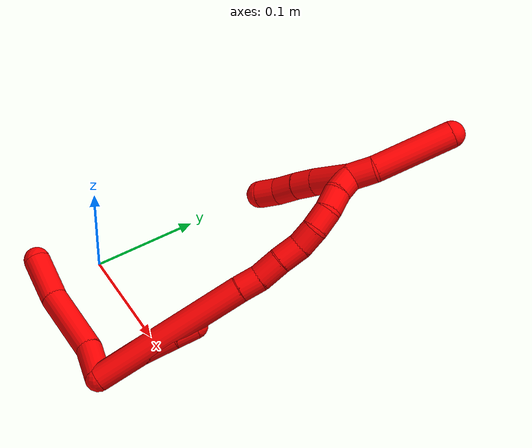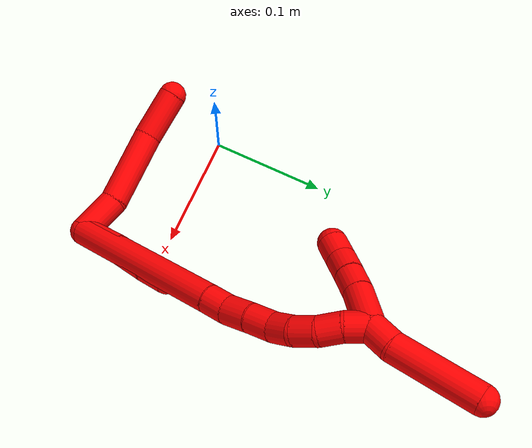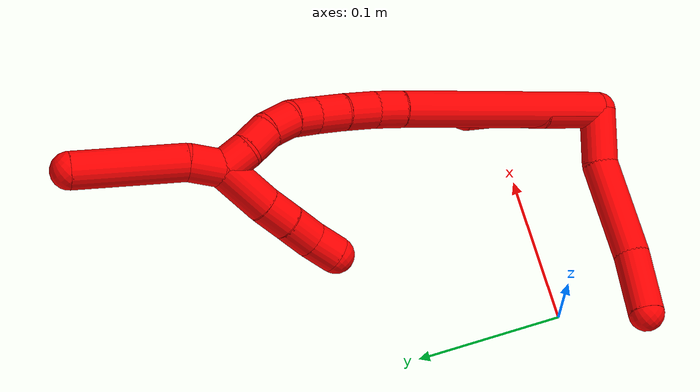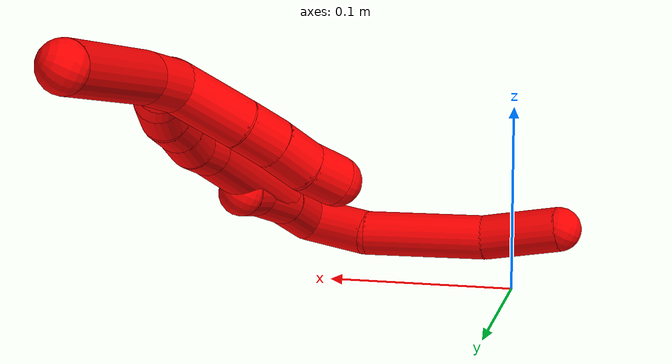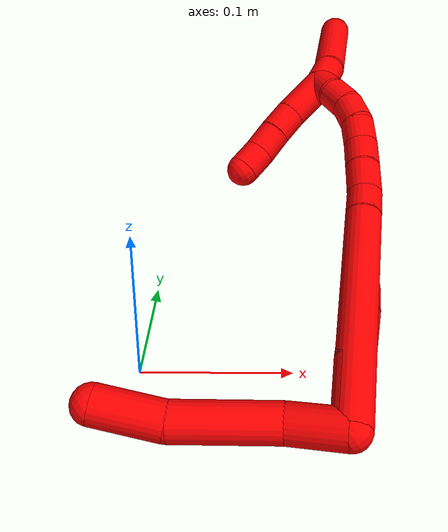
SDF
<sdf version="1.7">
 <world name="default">
  <model name="2">
   <static>0</static>
   <link name="2">
    <collision name="collision-cylinder-e_1_2_8">
     <pose>-0.007372 0.012147 -0.01261 -2.37488 -0.398503 0.928384</pose>
     <geometry><cylinder><radius>0.0125</radius><length>0.037995</length></cylinder></geometry>
     <surface>
      <friction><ode><mu>1.16</mu><mu2>1.16</mu2><slip1>0</slip1><slip2>0</slip2></ode></friction>
      <contact><ode><kp>1e+06</kp><kd>1</kd><max_vel>0</max_vel><min_depth>0.001</min_depth></ode></contact>
     </surface>
    </collision>
    <visual name="visual-cylinder-e_1_2_8">
     <pose>-0.007372 0.012147 -0.01261 -2.37488 -0.398503 0.928384</pose>
     <geometry><cylinder><radius>0.0125</radius><length>0.037995</length></cylinder></geometry>
     <material><ambient>1 0 0 1</ambient></material>
    </visual>
    <collision name="collision-cylinder-e_2_8_9">
     <pose>-0.032185 0.037669 -0.05113 -2.66507 -0.539058 1.69922</pose>
     <geometry><cylinder><radius>0.0125</radius><length>0.067954</length></cylinder></geometry>
     <surface>
      <friction><ode><mu>1.16</mu><mu2>1.16</mu2><slip1>0</slip1><slip2>0</slip2></ode></friction>
      <contact><ode><kp>1e+06</kp><kd>1</kd><max_vel>0</max_vel><min_depth>0.001</min_depth></ode></contact>
     </surface>
    </collision>
    <visual name="visual-cylinder-e_2_8_9">
     <pose>-0.032185 0.037669 -0.05113 -2.66507 -0.539058 1.69922</pose>
     <geometry><cylinder><radius>0.0125</radius><length>0.067954</length></cylinder></geometry>
     <material><ambient>1 0 0 1</ambient></material>
    </visual>
    <collision name="collision-cylinder-e_3_9_6">
     <pose>-0.063985 0.060725 -0.09065 -2.52329 -0.710108 1.71939</pose>
     <geometry><cylinder><radius>0.0125</radius><length>0.044051</length></cylinder></geometry>
     <surface>
      <friction><ode><mu>1.16</mu><mu2>1.16</mu2><slip1>0</slip1><slip2>0</slip2></ode></friction>
      <contact><ode><kp>1e+06</kp><kd>1</kd><max_vel>0</max_vel><min_depth>0.001</min_depth></ode></contact>
     </surface>
    </collision>
    <visual name="visual-cylinder-e_3_9_6">
     <pose>-0.063985 0.060725 -0.09065 -2.52329 -0.710108 1.71939</pose>
     <geometry><cylinder><radius>0.0125</radius><length>0.044051</length></cylinder></geometry>
     <material><ambient>1 0 0 1</ambient></material>
    </visual>
    <collision name="collision-cylinder-e_1_2_10">
     <pose>-0.006609 0.013695 0.015154 -0.734866 -0.312939 0.121298</pose>
     <geometry><cylinder><radius>0.0125</radius><length>0.042936</length></cylinder></geometry>
     <surface>
      <friction><ode><mu>1.16</mu><mu2>1.16</mu2><slip1>0</slip1><slip2>0</slip2></ode></friction>
      <contact><ode><kp>1e+06</kp><kd>1</kd><max_vel>0</max_vel><min_depth>0.001</min_depth></ode></contact>
     </surface>
    </collision>
    <visual name="visual-cylinder-e_1_2_10">
     <pose>-0.006609 0.013695 0.015154 -0.734866 -0.312939 0.121298</pose>
     <geometry><cylinder><radius>0.0125</radius><length>0.042936</length></cylinder></geometry>
     <material><ambient>1 0 0 1</ambient></material>
    </visual>
    <collision name="collision-cylinder-e_2_10_11">
     <pose>-0.016736 0.038952 0.043291 -0.727587 -0.199662 0.076236</pose>
     <geometry><cylinder><radius>0.0125</radius><length>0.035476</length></cylinder></geometry>
     <surface>
      <friction><ode><mu>1.16</mu><mu2>1.16</mu2><slip1>0</slip1><slip2>0</slip2></ode></friction>
      <contact><ode><kp>1e+06</kp><kd>1</kd><max_vel>0</max_vel><min_depth>0.001</min_depth></ode></contact>
     </surface>
    </collision>
    <visual name="visual-cylinder-e_2_10_11">
     <pose>-0.016736 0.038952 0.043291 -0.727587 -0.199662 0.076236</pose>
     <geometry><cylinder><radius>0.0125</radius><length>0.035476</length></cylinder></geometry>
     <material><ambient>1 0 0 1</ambient></material>
    </visual>
    <collision name="collision-cylinder-e_3_11_5">
     <pose>-0.021552 0.058685 0.063208 -0.867045 -0.120491 0.055827</pose>
     <geometry><cylinder><radius>0.0125</radius><length>0.021588</length></cylinder></geometry>
     <surface>
      <friction><ode><mu>1.16</mu><mu2>1.16</mu2><slip1>0</slip1><slip2>0</slip2></ode></friction>
      <contact><ode><kp>1e+06</kp><kd>1</kd><max_vel>0</max_vel><min_depth>0.001</min_depth></ode></contact>
     </surface>
    </collision>
    <visual name="visual-cylinder-e_3_11_5">
     <pose>-0.021552 0.058685 0.063208 -0.867045 -0.120491 0.055827</pose>
     <geometry><cylinder><radius>0.0125</radius><length>0.021588</length></cylinder></geometry>
     <material><ambient>1 0 0 1</ambient></material>
    </visual>
    <collision name="collision-cylinder-e_1_2_12">
     <pose>-0.023579 0.04794 0.054448 -0.721929 -0.314252 0.119475</pose>
     <geometry><cylinder><radius>0.0125</radius><length>0.152562</length></cylinder></geometry>
     <surface>
      <friction><ode><mu>1.16</mu><mu2>1.16</mu2><slip1>0</slip1><slip2>0</slip2></ode></friction>
      <contact><ode><kp>1e+06</kp><kd>1</kd><max_vel>0</max_vel><min_depth>0.001</min_depth></ode></contact>
     </surface>
    </collision>
    <visual name="visual-cylinder-e_1_2_12">
     <pose>-0.023579 0.04794 0.054448 -0.721929 -0.314252 0.119475</pose>
     <geometry><cylinder><radius>0.0125</radius><length>0.152562</length></cylinder></geometry>
     <material><ambient>1 0 0 1</ambient></material>
    </visual>
    <collision name="collision-cylinder-e_2_12_13">
     <pose>-0.049643 0.102816 0.116093 -0.766795 -0.24368 0.098699</pose>
     <geometry><cylinder><radius>0.0125</radius><length>0.020599</length></cylinder></geometry>
     <surface>
      <friction><ode><mu>1.16</mu><mu2>1.16</mu2><slip1>0</slip1><slip2>0</slip2></ode></friction>
      <contact><ode><kp>1e+06</kp><kd>1</kd><max_vel>0</max_vel><min_depth>0.001</min_depth></ode></contact>
     </surface>
    </collision>
    <visual name="visual-cylinder-e_2_12_13">
     <pose>-0.049643 0.102816 0.116093 -0.766795 -0.24368 0.098699</pose>
     <geometry><cylinder><radius>0.0125</radius><length>0.020599</length></cylinder></geometry>
     <material><ambient>1 0 0 1</ambient></material>
    </visual>
    <collision name="collision-cylinder-e_3_13_14">
     <pose>-0.057351 0.117233 0.131086 -0.764925 -0.450261 0.183732</pose>
     <geometry><cylinder><radius>0.0125</radius><length>0.024002</length></cylinder></geometry>
     <surface>
      <friction><ode><mu>1.16</mu><mu2>1.16</mu2><slip1>0</slip1><slip2>0</slip2></ode></friction>
      <contact><ode><kp>1e+06</kp><kd>1</kd><max_vel>0</max_vel><min_depth>0.001</min_depth></ode></contact>
     </surface>
    </collision>
    <visual name="visual-cylinder-e_3_13_14">
     <pose>-0.057351 0.117233 0.131086 -0.764925 -0.450261 0.183732</pose>
     <geometry><cylinder><radius>0.0125</radius><length>0.024002</length></cylinder></geometry>
     <material><ambient>1 0 0 1</ambient></material>
    </visual>
    <collision name="collision-cylinder-e_4_14_15">
     <pose>-0.066483 0.13248 0.146066 -0.824136 -0.353974 0.156038</pose>
     <geometry><cylinder><radius>0.0125</radius><length>0.022555</length></cylinder></geometry>
     <surface>
      <friction><ode><mu>1.16</mu><mu2>1.16</mu2><slip1>0</slip1><slip2>0</slip2></ode></friction>
      <contact><ode><kp>1e+06</kp><kd>1</kd><max_vel>0</max_vel><min_depth>0.001</min_depth></ode></contact>
     </surface>
    </collision>
    <visual name="visual-cylinder-e_4_14_15">
     <pose>-0.066483 0.13248 0.146066 -0.824136 -0.353974 0.156038</pose>
     <geometry><cylinder><radius>0.0125</radius><length>0.022555</length></cylinder></geometry>
     <material><ambient>1 0 0 1</ambient></material>
    </visual>
    <collision name="collision-cylinder-e_5_15_16">
     <pose>-0.076133 0.146032 0.159145 -0.776369 -0.607336 0.254898</pose>
     <geometry><cylinder><radius>0.0125</radius><length>0.020122</length></cylinder></geometry>
     <surface>
      <friction><ode><mu>1.16</mu><mu2>1.16</mu2><slip1>0</slip1><slip2>0</slip2></ode></friction>
      <contact><ode><kp>1e+06</kp><kd>1</kd><max_vel>0</max_vel><min_depth>0.001</min_depth></ode></contact>
     </surface>
    </collision>
    <visual name="visual-cylinder-e_5_15_16">
     <pose>-0.076133 0.146032 0.159145 -0.776369 -0.607336 0.254898</pose>
     <geometry><cylinder><radius>0.0125</radius><length>0.020122</length></cylinder></geometry>
     <material><ambient>1 0 0 1</ambient></material>
    </visual>
    <collision name="collision-cylinder-e_6_16_17">
     <pose>-0.087277 0.159473 0.16876 -1.11823 -0.56572 0.359799</pose>
     <geometry><cylinder><radius>0.0125</radius><length>0.020156</length></cylinder></geometry>
     <surface>
      <friction><ode><mu>1.16</mu><mu2>1.16</mu2><slip1>0</slip1><slip2>0</slip2></ode></friction>
      <contact><ode><kp>1e+06</kp><kd>1</kd><max_vel>0</max_vel><min_depth>0.001</min_depth></ode></contact>
     </surface>
    </collision>
    <visual name="visual-cylinder-e_6_16_17">
     <pose>-0.087277 0.159473 0.16876 -1.11823 -0.56572 0.359799</pose>
     <geometry><cylinder><radius>0.0125</radius><length>0.020156</length></cylinder></geometry>
     <material><ambient>1 0 0 1</ambient></material>
    </visual>
    <collision name="collision-cylinder-e_7_17_18">
     <pose>-0.097607 0.175762 0.173536 -1.44918 -0.515293 0.458321</pose>
     <geometry><cylinder><radius>0.0125</radius><length>0.020002</length></cylinder></geometry>
     <surface>
      <friction><ode><mu>1.16</mu><mu2>1.16</mu2><slip1>0</slip1><slip2>0</slip2></ode></friction>
      <contact><ode><kp>1e+06</kp><kd>1</kd><max_vel>0</max_vel><min_depth>0.001</min_depth></ode></contact>
     </surface>
    </collision>
    <visual name="visual-cylinder-e_7_17_18">
     <pose>-0.097607 0.175762 0.173536 -1.44918 -0.515293 0.458321</pose>
     <geometry><cylinder><radius>0.0125</radius><length>0.020002</length></cylinder></geometry>
     <material><ambient>1 0 0 1</ambient></material>
    </visual>
    <collision name="collision-cylinder-e_8_18_1">
     <pose>-0.105493 0.193819 0.176192 -1.40246 -0.30016 0.253999</pose>
     <geometry><cylinder><radius>0.0125</radius><length>0.020002</length></cylinder></geometry>
     <surface>
      <friction><ode><mu>1.16</mu><mu2>1.16</mu2><slip1>0</slip1><slip2>0</slip2></ode></friction>
      <contact><ode><kp>1e+06</kp><kd>1</kd><max_vel>0</max_vel><min_depth>0.001</min_depth></ode></contact>
     </surface>
    </collision>
    <visual name="visual-cylinder-e_8_18_1">
     <pose>-0.105493 0.193819 0.176192 -1.40246 -0.30016 0.253999</pose>
     <geometry><cylinder><radius>0.0125</radius><length>0.020002</length></cylinder></geometry>
     <material><ambient>1 0 0 1</ambient></material>
    </visual>
    <collision name="collision-cylinder-e_1_1_19">
     <pose>-0.106117 0.202161 0.159264 3.08354 0.125047 2.2731</pose>
     <geometry><cylinder><radius>0.0125</radius><length>0.037412</length></cylinder></geometry>
     <surface>
      <friction><ode><mu>1.16</mu><mu2>1.16</mu2><slip1>0</slip1><slip2>0</slip2></ode></friction>
      <contact><ode><kp>1e+06</kp><kd>1</kd><max_vel>0</max_vel><min_depth>0.001</min_depth></ode></contact>
     </surface>
    </collision>
    <visual name="visual-cylinder-e_1_1_19">
     <pose>-0.106117 0.202161 0.159264 3.08354 0.125047 2.2731</pose>
     <geometry><cylinder><radius>0.0125</radius><length>0.037412</length></cylinder></geometry>
     <material><ambient>1 0 0 1</ambient></material>
    </visual>
    <collision name="collision-cylinder-e_2_19_20">
     <pose>-0.102072 0.199693 0.13041 3.00767 0.162867 1.76595</pose>
     <geometry><cylinder><radius>0.0125</radius><length>0.021118</length></cylinder></geometry>
     <surface>
      <friction><ode><mu>1.16</mu><mu2>1.16</mu2><slip1>0</slip1><slip2>0</slip2></ode></friction>
      <contact><ode><kp>1e+06</kp><kd>1</kd><max_vel>0</max_vel><min_depth>0.001</min_depth></ode></contact>
     </surface>
    </collision>
    <visual name="visual-cylinder-e_2_19_20">
     <pose>-0.102072 0.199693 0.13041 3.00767 0.162867 1.76595</pose>
     <geometry><cylinder><radius>0.0125</radius><length>0.021118</length></cylinder></geometry>
     <material><ambient>1 0 0 1</ambient></material>
    </visual>
    <collision name="collision-cylinder-e_3_20_21">
     <pose>-0.097961 0.197087 0.109711 3.02499 0.22576 2.19066</pose>
     <geometry><cylinder><radius>0.0125</radius><length>0.021431</length></cylinder></geometry>
     <surface>
      <friction><ode><mu>1.16</mu><mu2>1.16</mu2><slip1>0</slip1><slip2>0</slip2></ode></friction>
      <contact><ode><kp>1e+06</kp><kd>1</kd><max_vel>0</max_vel><min_depth>0.001</min_depth></ode></contact>
     </surface>
    </collision>
    <visual name="visual-cylinder-e_3_20_21">
     <pose>-0.097961 0.197087 0.109711 3.02499 0.22576 2.19066</pose>
     <geometry><cylinder><radius>0.0125</radius><length>0.021431</length></cylinder></geometry>
     <material><ambient>1 0 0 1</ambient></material>
    </visual>
    <collision name="collision-cylinder-e_4_21_4">
     <pose>-0.094568 0.193806 0.089584 2.9329 0.099364 0.886549</pose>
     <geometry><cylinder><radius>0.0125</radius><length>0.020038</length></cylinder></geometry>
     <surface>
      <friction><ode><mu>1.16</mu><mu2>1.16</mu2><slip1>0</slip1><slip2>0</slip2></ode></friction>
      <contact><ode><kp>1e+06</kp><kd>1</kd><max_vel>0</max_vel><min_depth>0.001</min_depth></ode></contact>
     </surface>
    </collision>
    <visual name="visual-cylinder-e_4_21_4">
     <pose>-0.094568 0.193806 0.089584 2.9329 0.099364 0.886549</pose>
     <geometry><cylinder><radius>0.0125</radius><length>0.020038</length></cylinder></geometry>
     <material><ambient>1 0 0 1</ambient></material>
    </visual>
    <collision name="collision-cylinder-e_1_1_22">
     <pose>-0.109519 0.209806 0.187538 -0.59306 -0.090699 0.027729</pose>
     <geometry><cylinder><radius>0.0125</radius><length>0.023599</length></cylinder></geometry>
     <surface>
      <friction><ode><mu>1.16</mu><mu2>1.16</mu2><slip1>0</slip1><slip2>0</slip2></ode></friction>
      <contact><ode><kp>1e+06</kp><kd>1</kd><max_vel>0</max_vel><min_depth>0.001</min_depth></ode></contact>
     </surface>
    </collision>
    <visual name="visual-cylinder-e_1_1_22">
     <pose>-0.109519 0.209806 0.187538 -0.59306 -0.090699 0.027729</pose>
     <geometry><cylinder><radius>0.0125</radius><length>0.023599</length></cylinder></geometry>
     <material><ambient>1 0 0 1</ambient></material>
    </visual>
    <collision name="collision-cylinder-e_2_22_3">
     <pose>-0.115035 0.244564 0.222675 -0.837565 -0.116707 0.051995</pose>
     <geometry><cylinder><radius>0.0125</radius><length>0.076401</length></cylinder></geometry>
     <surface>
      <friction><ode><mu>1.16</mu><mu2>1.16</mu2><slip1>0</slip1><slip2>0</slip2></ode></friction>
      <contact><ode><kp>1e+06</kp><kd>1</kd><max_vel>0</max_vel><min_depth>0.001</min_depth></ode></contact>
     </surface>
    </collision>
    <visual name="visual-cylinder-e_2_22_3">
     <pose>-0.115035 0.244564 0.222675 -0.837565 -0.116707 0.051995</pose>
     <geometry><cylinder><radius>0.0125</radius><length>0.076401</length></cylinder></geometry>
     <material><ambient>1 0 0 1</ambient></material>
    </visual>
    <collision name="collision-sphere-3">
     <pose>-0.119484 0.272754 0.248067 0 -0 0</pose>
     <geometry><sphere><radius>0.0125</radius></sphere></geometry>
     <surface>
      <friction><ode><mu>1.16</mu><mu2>1.16</mu2><slip1>0</slip1><slip2>0</slip2></ode></friction>
      <contact><ode><kp>1e+06</kp><kd>1</kd><max_vel>0</max_vel><min_depth>0.001</min_depth></ode></contact>
     </surface>
    </collision>
    <visual name="visual-sphere-3">
     <pose>-0.119484 0.272754 0.248067 0 -0 0</pose>
     <geometry><sphere><radius>0.0125</radius></sphere></geometry>
     <material><ambient>1 0 0 1</ambient></material>
    </visual>
    <collision name="collision-sphere-22">
     <pose>-0.110587 0.216373 0.197282 0 -0 0</pose>
     <geometry><sphere><radius>0.0125</radius></sphere></geometry>
     <surface>
      <friction><ode><mu>1.16</mu><mu2>1.16</mu2><slip1>0</slip1><slip2>0</slip2></ode></friction>
      <contact><ode><kp>1e+06</kp><kd>1</kd><max_vel>0</max_vel><min_depth>0.001</min_depth></ode></contact>
     </surface>
    </collision>
    <visual name="visual-sphere-22">
     <pose>-0.110587 0.216373 0.197282 0 -0 0</pose>
     <geometry><sphere><radius>0.0125</radius></sphere></geometry>
     <material><ambient>1 0 0 1</ambient></material>
    </visual>
    <collision name="collision-sphere-4">
     <pose>-0.093574 0.191741 0.079831 0 -0 0</pose>
     <geometry><sphere><radius>0.0125</radius></sphere></geometry>
     <surface>
      <friction><ode><mu>1.16</mu><mu2>1.16</mu2><slip1>0</slip1><slip2>0</slip2></ode></friction>
      <contact><ode><kp>1e+06</kp><kd>1</kd><max_vel>0</max_vel><min_depth>0.001</min_depth></ode></contact>
     </surface>
    </collision>
    <visual name="visual-sphere-4">
     <pose>-0.093574 0.191741 0.079831 0 -0 0</pose>
     <geometry><sphere><radius>0.0125</radius></sphere></geometry>
     <material><ambient>1 0 0 1</ambient></material>
    </visual>
    <collision name="collision-sphere-21">
     <pose>-0.095562 0.195872 0.099338 0 -0 0</pose>
     <geometry><sphere><radius>0.0125</radius></sphere></geometry>
     <surface>
      <friction><ode><mu>1.16</mu><mu2>1.16</mu2><slip1>0</slip1><slip2>0</slip2></ode></friction>
      <contact><ode><kp>1e+06</kp><kd>1</kd><max_vel>0</max_vel><min_depth>0.001</min_depth></ode></contact>
     </surface>
    </collision>
    <visual name="visual-sphere-21">
     <pose>-0.095562 0.195872 0.099338 0 -0 0</pose>
     <geometry><sphere><radius>0.0125</radius></sphere></geometry>
     <material><ambient>1 0 0 1</ambient></material>
    </visual>
    <collision name="collision-sphere-20">
     <pose>-0.100359 0.198302 0.120083 0 -0 0</pose>
     <geometry><sphere><radius>0.0125</radius></sphere></geometry>
     <surface>
      <friction><ode><mu>1.16</mu><mu2>1.16</mu2><slip1>0</slip1><slip2>0</slip2></ode></friction>
      <contact><ode><kp>1e+06</kp><kd>1</kd><max_vel>0</max_vel><min_depth>0.001</min_depth></ode></contact>
     </surface>
    </collision>
    <visual name="visual-sphere-20">
     <pose>-0.100359 0.198302 0.120083 0 -0 0</pose>
     <geometry><sphere><radius>0.0125</radius></sphere></geometry>
     <material><ambient>1 0 0 1</ambient></material>
    </visual>
    <collision name="collision-sphere-11">
     <pose>-0.020254 0.050515 0.056274 0 -0 0</pose>
     <geometry><sphere><radius>0.0125</radius></sphere></geometry>
     <surface>
      <friction><ode><mu>1.16</mu><mu2>1.16</mu2><slip1>0</slip1><slip2>0</slip2></ode></friction>
      <contact><ode><kp>1e+06</kp><kd>1</kd><max_vel>0</max_vel><min_depth>0.001</min_depth></ode></contact>
     </surface>
    </collision>
    <visual name="visual-sphere-11">
     <pose>-0.020254 0.050515 0.056274 0 -0 0</pose>
     <geometry><sphere><radius>0.0125</radius></sphere></geometry>
     <material><ambient>1 0 0 1</ambient></material>
    </visual>
    <collision name="collision-sphere-10">
     <pose>-0.013218 0.02739 0.030308 0 -0 0</pose>
     <geometry><sphere><radius>0.0125</radius></sphere></geometry>
     <surface>
      <friction><ode><mu>1.16</mu><mu2>1.16</mu2><slip1>0</slip1><slip2>0</slip2></ode></friction>
      <contact><ode><kp>1e+06</kp><kd>1</kd><max_vel>0</max_vel><min_depth>0.001</min_depth></ode></contact>
     </surface>
    </collision>
    <visual name="visual-sphere-10">
     <pose>-0.013218 0.02739 0.030308 0 -0 0</pose>
     <geometry><sphere><radius>0.0125</radius></sphere></geometry>
     <material><ambient>1 0 0 1</ambient></material>
    </visual>
    <collision name="collision-sphere-6">
     <pose>-0.078344 0.070407 -0.10426 0 -0 0</pose>
     <geometry><sphere><radius>0.0125</radius></sphere></geometry>
     <surface>
      <friction><ode><mu>1.16</mu><mu2>1.16</mu2><slip1>0</slip1><slip2>0</slip2></ode></friction>
      <contact><ode><kp>1e+06</kp><kd>1</kd><max_vel>0</max_vel><min_depth>0.001</min_depth></ode></contact>
     </surface>
    </collision>
    <visual name="visual-sphere-6">
     <pose>-0.078344 0.070407 -0.10426 0 -0 0</pose>
     <geometry><sphere><radius>0.0125</radius></sphere></geometry>
     <material><ambient>1 0 0 1</ambient></material>
    </visual>
    <collision name="collision-sphere-9">
     <pose>-0.049626 0.051044 -0.07704 0 -0 0</pose>
     <geometry><sphere><radius>0.0125</radius></sphere></geometry>
     <surface>
      <friction><ode><mu>1.16</mu><mu2>1.16</mu2><slip1>0</slip1><slip2>0</slip2></ode></friction>
      <contact><ode><kp>1e+06</kp><kd>1</kd><max_vel>0</max_vel><min_depth>0.001</min_depth></ode></contact>
     </surface>
    </collision>
    <visual name="visual-sphere-9">
     <pose>-0.049626 0.051044 -0.07704 0 -0 0</pose>
     <geometry><sphere><radius>0.0125</radius></sphere></geometry>
     <material><ambient>1 0 0 1</ambient></material>
    </visual>
    <collision name="collision-sphere-2">
     <geometry><sphere><radius>0.0125</radius></sphere></geometry>
     <surface>
      <friction><ode><mu>1.16</mu><mu2>1.16</mu2><slip1>0</slip1><slip2>0</slip2></ode></friction>
      <contact><ode><kp>1e+06</kp><kd>1</kd><max_vel>0</max_vel><min_depth>0.001</min_depth></ode></contact>
     </surface>
    </collision>
    <visual name="visual-sphere-2">
     <geometry><sphere><radius>0.0125</radius></sphere></geometry>
     <material><ambient>1 0 0 1</ambient></material>
    </visual>
    <collision name="collision-sphere-19">
     <pose>-0.103784 0.201084 0.140736 0 -0 0</pose>
     <geometry><sphere><radius>0.0125</radius></sphere></geometry>
     <surface>
      <friction><ode><mu>1.16</mu><mu2>1.16</mu2><slip1>0</slip1><slip2>0</slip2></ode></friction>
      <contact><ode><kp>1e+06</kp><kd>1</kd><max_vel>0</max_vel><min_depth>0.001</min_depth></ode></contact>
     </surface>
    </collision>
    <visual name="visual-sphere-19">
     <pose>-0.103784 0.201084 0.140736 0 -0 0</pose>
     <geometry><sphere><radius>0.0125</radius></sphere></geometry>
     <material><ambient>1 0 0 1</ambient></material>
    </visual>
    <collision name="collision-sphere-8">
     <pose>-0.014744 0.024294 -0.02522 0 -0 0</pose>
     <geometry><sphere><radius>0.0125</radius></sphere></geometry>
     <surface>
      <friction><ode><mu>1.16</mu><mu2>1.16</mu2><slip1>0</slip1><slip2>0</slip2></ode></friction>
      <contact><ode><kp>1e+06</kp><kd>1</kd><max_vel>0</max_vel><min_depth>0.001</min_depth></ode></contact>
     </surface>
    </collision>
    <visual name="visual-sphere-8">
     <pose>-0.014744 0.024294 -0.02522 0 -0 0</pose>
     <geometry><sphere><radius>0.0125</radius></sphere></geometry>
     <material><ambient>1 0 0 1</ambient></material>
    </visual>
    <collision name="collision-sphere-5">
     <pose>-0.022849 0.066855 0.070142 0 -0 0</pose>
     <geometry><sphere><radius>0.0125</radius></sphere></geometry>
     <surface>
      <friction><ode><mu>1.16</mu><mu2>1.16</mu2><slip1>0</slip1><slip2>0</slip2></ode></friction>
      <contact><ode><kp>1e+06</kp><kd>1</kd><max_vel>0</max_vel><min_depth>0.001</min_depth></ode></contact>
     </surface>
    </collision>
    <visual name="visual-sphere-5">
     <pose>-0.022849 0.066855 0.070142 0 -0 0</pose>
     <geometry><sphere><radius>0.0125</radius></sphere></geometry>
     <material><ambient>1 0 0 1</ambient></material>
    </visual>
    <collision name="collision-sphere-12">
     <pose>-0.047158 0.095881 0.108895 0 -0 0</pose>
     <geometry><sphere><radius>0.0125</radius></sphere></geometry>
     <surface>
      <friction><ode><mu>1.16</mu><mu2>1.16</mu2><slip1>0</slip1><slip2>0</slip2></ode></friction>
      <contact><ode><kp>1e+06</kp><kd>1</kd><max_vel>0</max_vel><min_depth>0.001</min_depth></ode></contact>
     </surface>
    </collision>
    <visual name="visual-sphere-12">
     <pose>-0.047158 0.095881 0.108895 0 -0 0</pose>
     <geometry><sphere><radius>0.0125</radius></sphere></geometry>
     <material><ambient>1 0 0 1</ambient></material>
    </visual>
    <collision name="collision-sphere-13">
     <pose>-0.052128 0.109751 0.123291 0 -0 0</pose>
     <geometry><sphere><radius>0.0125</radius></sphere></geometry>
     <surface>
      <friction><ode><mu>1.16</mu><mu2>1.16</mu2><slip1>0</slip1><slip2>0</slip2></ode></friction>
      <contact><ode><kp>1e+06</kp><kd>1</kd><max_vel>0</max_vel><min_depth>0.001</min_depth></ode></contact>
     </surface>
    </collision>
    <visual name="visual-sphere-13">
     <pose>-0.052128 0.109751 0.123291 0 -0 0</pose>
     <geometry><sphere><radius>0.0125</radius></sphere></geometry>
     <material><ambient>1 0 0 1</ambient></material>
    </visual>
    <collision name="collision-sphere-14">
     <pose>-0.062574 0.124716 0.138882 0 -0 0</pose>
     <geometry><sphere><radius>0.0125</radius></sphere></geometry>
     <surface>
      <friction><ode><mu>1.16</mu><mu2>1.16</mu2><slip1>0</slip1><slip2>0</slip2></ode></friction>
      <contact><ode><kp>1e+06</kp><kd>1</kd><max_vel>0</max_vel><min_depth>0.001</min_depth></ode></contact>
     </surface>
    </collision>
    <visual name="visual-sphere-14">
     <pose>-0.062574 0.124716 0.138882 0 -0 0</pose>
     <geometry><sphere><radius>0.0125</radius></sphere></geometry>
     <material><ambient>1 0 0 1</ambient></material>
    </visual>
    <collision name="collision-sphere-15">
     <pose>-0.070392 0.140243 0.153251 0 -0 0</pose>
     <geometry><sphere><radius>0.0125</radius></sphere></geometry>
     <surface>
      <friction><ode><mu>1.16</mu><mu2>1.16</mu2><slip1>0</slip1><slip2>0</slip2></ode></friction>
      <contact><ode><kp>1e+06</kp><kd>1</kd><max_vel>0</max_vel><min_depth>0.001</min_depth></ode></contact>
     </surface>
    </collision>
    <visual name="visual-sphere-15">
     <pose>-0.070392 0.140243 0.153251 0 -0 0</pose>
     <geometry><sphere><radius>0.0125</radius></sphere></geometry>
     <material><ambient>1 0 0 1</ambient></material>
    </visual>
    <collision name="collision-sphere-16">
     <pose>-0.081875 0.151821 0.16504 0 -0 0</pose>
     <geometry><sphere><radius>0.0125</radius></sphere></geometry>
     <surface>
      <friction><ode><mu>1.16</mu><mu2>1.16</mu2><slip1>0</slip1><slip2>0</slip2></ode></friction>
      <contact><ode><kp>1e+06</kp><kd>1</kd><max_vel>0</max_vel><min_depth>0.001</min_depth></ode></contact>
     </surface>
    </collision>
    <visual name="visual-sphere-16">
     <pose>-0.081875 0.151821 0.16504 0 -0 0</pose>
     <geometry><sphere><radius>0.0125</radius></sphere></geometry>
     <material><ambient>1 0 0 1</ambient></material>
    </visual>
    <collision name="collision-sphere-17">
     <pose>-0.092679 0.167124 0.17248 0 -0 0</pose>
     <geometry><sphere><radius>0.0125</radius></sphere></geometry>
     <surface>
      <friction><ode><mu>1.16</mu><mu2>1.16</mu2><slip1>0</slip1><slip2>0</slip2></ode></friction>
      <contact><ode><kp>1e+06</kp><kd>1</kd><max_vel>0</max_vel><min_depth>0.001</min_depth></ode></contact>
     </surface>
    </collision>
    <visual name="visual-sphere-17">
     <pose>-0.092679 0.167124 0.17248 0 -0 0</pose>
     <geometry><sphere><radius>0.0125</radius></sphere></geometry>
     <material><ambient>1 0 0 1</ambient></material>
    </visual>
    <collision name="collision-sphere-18">
     <pose>-0.102536 0.1844 0.174592 0 -0 0</pose>
     <geometry><sphere><radius>0.0125</radius></sphere></geometry>
     <surface>
      <friction><ode><mu>1.16</mu><mu2>1.16</mu2><slip1>0</slip1><slip2>0</slip2></ode></friction>
      <contact><ode><kp>1e+06</kp><kd>1</kd><max_vel>0</max_vel><min_depth>0.001</min_depth></ode></contact>
     </surface>
    </collision>
    <visual name="visual-sphere-18">
     <pose>-0.102536 0.1844 0.174592 0 -0 0</pose>
     <geometry><sphere><radius>0.0125</radius></sphere></geometry>
     <material><ambient>1 0 0 1</ambient></material>
    </visual>
    <collision name="collision-sphere-1">
     <pose>-0.10845 0.203238 0.177793 0 -0 0</pose>
     <geometry><sphere><radius>0.0125</radius></sphere></geometry>
     <surface>
      <friction><ode><mu>1.16</mu><mu2>1.16</mu2><slip1>0</slip1><slip2>0</slip2></ode></friction>
      <contact><ode><kp>1e+06</kp><kd>1</kd><max_vel>0</max_vel><min_depth>0.001</min_depth></ode></contact>
     </surface>
    </collision>
    <visual name="visual-sphere-1">
     <pose>-0.10845 0.203238 0.177793 0 -0 0</pose>
     <geometry><sphere><radius>0.0125</radius></sphere></geometry>
     <material><ambient>1 0 0 1</ambient></material>
    </visual>
    <inertial>
     <pose>-0.057295 0.108314 0.080852 0 -0 0</pose>
     <mass>0.75</mass>
     <inertia>
      <ixx>0.000414</ixx>
      <ixy>0</ixy>
      <ixz>0</ixz>
      <iyy>0.000412</iyy>
      <iyz>0</iyz>
      <izz>-0.00012</izz>
     </inertia>
    </inertial>
   </link>
   <pose>0.128777 -0.069408 0.016495 -0.497311 1.04286 -0.01352</pose>
  </model>
 </world>
</sdf>
